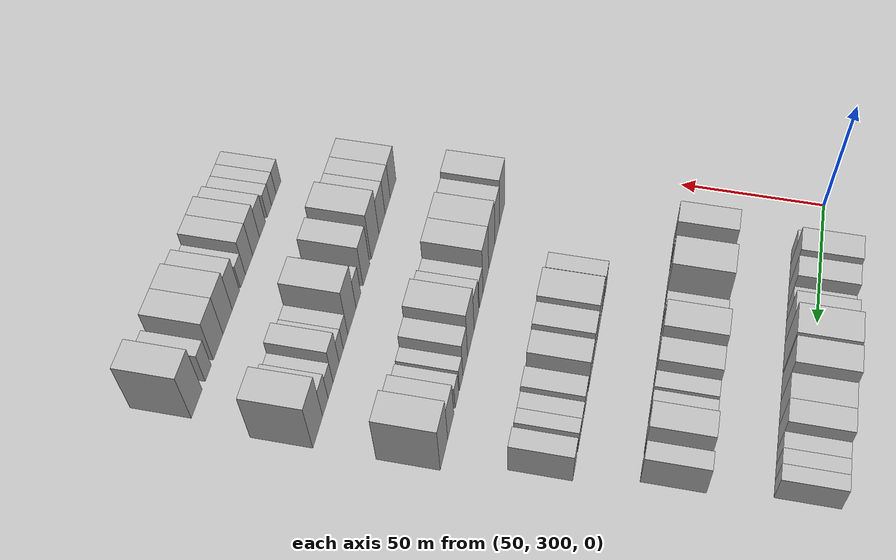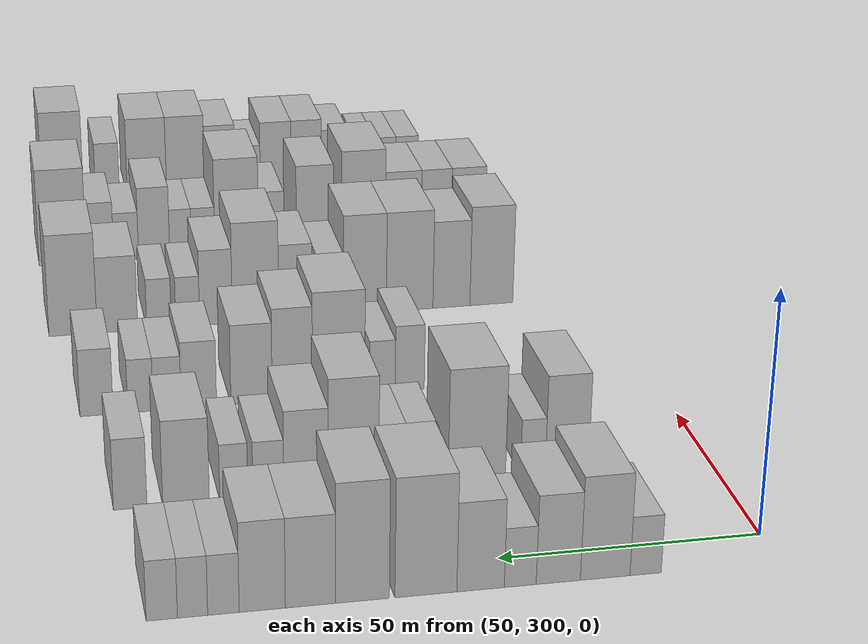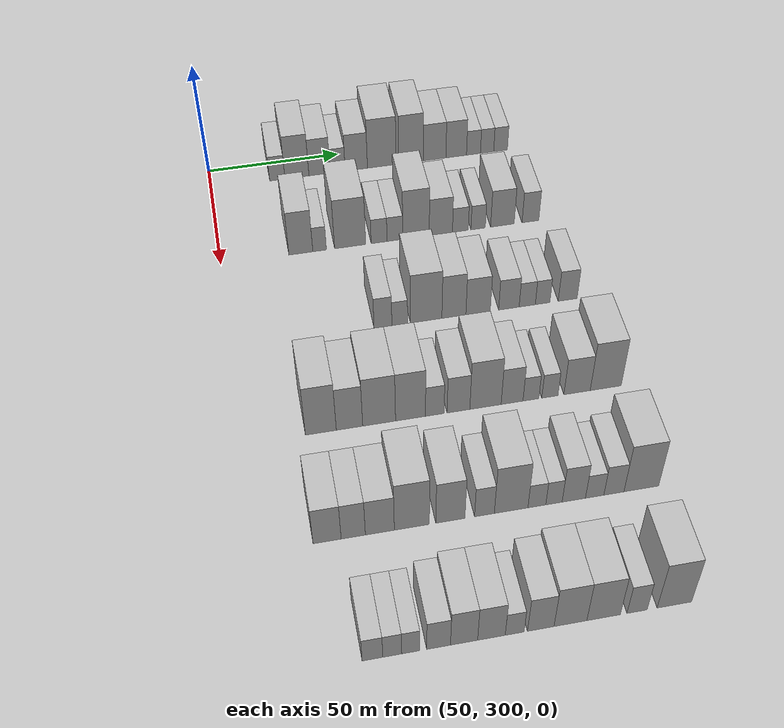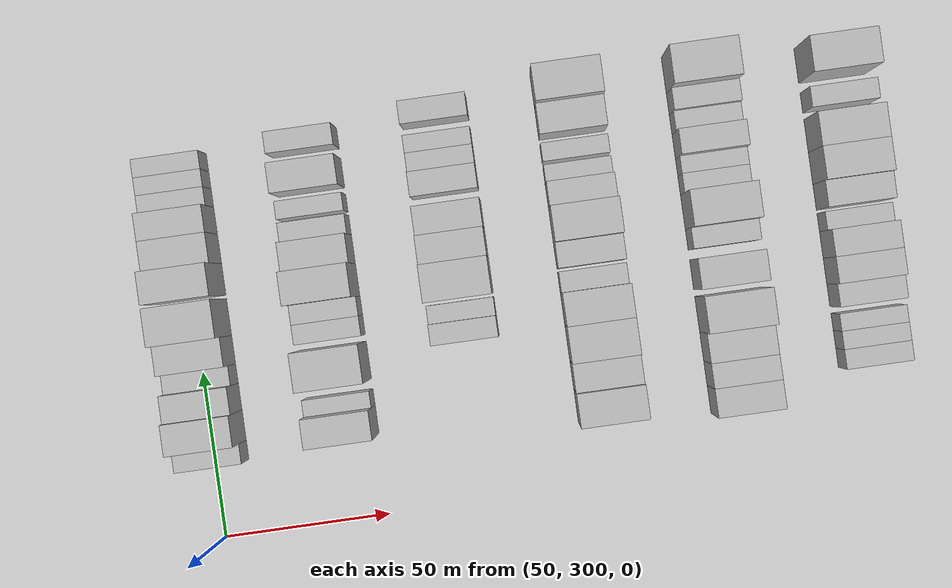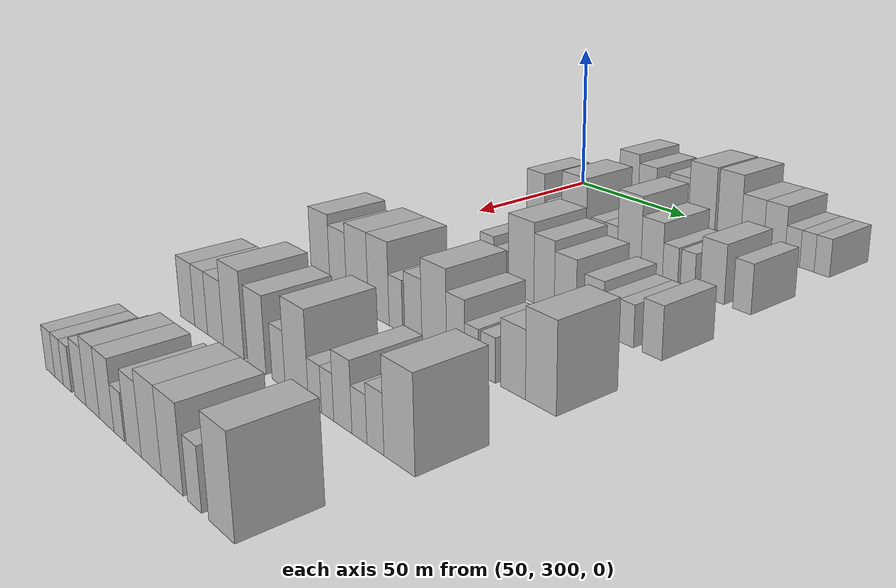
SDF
<sdf version="1.6">
 <world name="default">
  <model name="building_104">
   <static>1</static>
   <pose>50.0000 325.0932 0 0.000000 0.000000 0.000000</pose>
   <link name="link">
    <pose>0 0 6.00 0 0 0</pose>
    <collision name="collision"><geometry><box><size>20.0000 5.8486 12.0000</size></box></geometry></collision>
    <visual name="visual">
     <cast_shadows>0</cast_shadows>
     <geometry><box><size>20.0000 5.8486 12.0000</size></box></geometry>
     <material>
      <script>
       <uri>model://HANNAS_wall/materials/scripts</uri>
       <uri>model://HANNAS_wall/materials/textures</uri>
       <name>vrc/HANNAS_wall</name>
      </script>
     </material>
    </visual>
   </link>
  </model>
  <model name="building_105">
   <static>1</static>
   <pose>50.0000 332.6283 0 0.000000 0.000000 0.000000</pose>
   <link name="link">
    <pose>0 0 10.50 0 0 0</pose>
    <collision name="collision"><geometry><box><size>20.0000 9.2216 21.0000</size></box></geometry></collision>
    <visual name="visual">
     <cast_shadows>0</cast_shadows>
     <geometry><box><size>20.0000 9.2216 21.0000</size></box></geometry>
     <material>
      <script>
       <uri>model://HANNAS_wall/materials/scripts</uri>
       <uri>model://HANNAS_wall/materials/textures</uri>
       <name>vrc/HANNAS_wall</name>
      </script>
     </material>
    </visual>
   </link>
  </model>
  <model name="building_106">
   <static>1</static>
   <pose>50.0000 341.3157 0 0.000000 0.000000 0.000000</pose>
   <link name="link">
    <pose>0 0 9.00 0 0 0</pose>
    <collision name="collision"><geometry><box><size>20.0000 8.1533 18.0000</size></box></geometry></collision>
    <visual name="visual">
     <cast_shadows>0</cast_shadows>
     <geometry><box><size>20.0000 8.1533 18.0000</size></box></geometry>
     <material>
      <script>
       <uri>model://HANNAS_wall/materials/scripts</uri>
       <uri>model://HANNAS_wall/materials/textures</uri>
       <name>vrc/HANNAS_wall</name>
      </script>
     </material>
    </visual>
   </link>
  </model>
  <model name="building_107">
   <static>1</static>
   <pose>50.0000 348.3226 0 0.000000 0.000000 0.000000</pose>
   <link name="link">
    <pose>0 0 6.00 0 0 0</pose>
    <collision name="collision"><geometry><box><size>20.0000 5.8605 12.0000</size></box></geometry></collision>
    <visual name="visual">
     <cast_shadows>0</cast_shadows>
     <geometry><box><size>20.0000 5.8605 12.0000</size></box></geometry>
     <material>
      <script>
       <uri>model://HANNAS_wall/materials/scripts</uri>
       <uri>model://HANNAS_wall/materials/textures</uri>
       <name>vrc/HANNAS_wall</name>
      </script>
     </material>
    </visual>
   </link>
  </model>
  <model name="building_108">
   <static>1</static>
   <pose>50.0000 355.5914 0 0.000000 0.000000 0.000000</pose>
   <link name="link">
    <pose>0 0 9.00 0 0 0</pose>
    <collision name="collision"><geometry><box><size>20.0000 8.6771 18.0000</size></box></geometry></collision>
    <visual name="visual">
     <cast_shadows>0</cast_shadows>
     <geometry><box><size>20.0000 8.6771 18.0000</size></box></geometry>
     <material>
      <script>
       <uri>model://HANNAS_wall/materials/scripts</uri>
       <uri>model://HANNAS_wall/materials/textures</uri>
       <name>vrc/HANNAS_wall</name>
      </script>
     </material>
    </visual>
   </link>
  </model>
  <model name="building_109">
   <static>1</static>
   <pose>50.0000 365.5402 0 0.000000 0.000000 0.000000</pose>
   <link name="link">
    <pose>0 0 12.00 0 0 0</pose>
    <collision name="collision"><geometry><box><size>20.0000 11.2205 24.0000</size></box></geometry></collision>
    <visual name="visual">
     <cast_shadows>0</cast_shadows>
     <geometry><box><size>20.0000 11.2205 24.0000</size></box></geometry>
     <material>
      <script>
       <uri>model://HANNAS_wall/materials/scripts</uri>
       <uri>model://HANNAS_wall/materials/textures</uri>
       <name>vrc/HANNAS_wall</name>
      </script>
     </material>
    </visual>
   </link>
  </model>
  <model name="building_110">
   <static>1</static>
   <pose>50.0000 376.9643 0 0.000000 0.000000 0.000000</pose>
   <link name="link">
    <pose>0 0 12.00 0 0 0</pose>
    <collision name="collision"><geometry><box><size>20.0000 9.6275 24.0000</size></box></geometry></collision>
    <visual name="visual">
     <cast_shadows>0</cast_shadows>
     <geometry><box><size>20.0000 9.6275 24.0000</size></box></geometry>
     <material>
      <script>
       <uri>model://HANNAS_wall/materials/scripts</uri>
       <uri>model://HANNAS_wall/materials/textures</uri>
       <name>vrc/HANNAS_wall</name>
      </script>
     </material>
    </visual>
   </link>
  </model>
  <model name="building_111">
   <static>1</static>
   <pose>50.0000 386.2666 0 0.000000 0.000000 0.000000</pose>
   <link name="link">
    <pose>0 0 9.00 0 0 0</pose>
    <collision name="collision"><geometry><box><size>20.0000 8.9772 18.0000</size></box></geometry></collision>
    <visual name="visual">
     <cast_shadows>0</cast_shadows>
     <geometry><box><size>20.0000 8.9772 18.0000</size></box></geometry>
     <material>
      <script>
       <uri>model://HANNAS_wall/materials/scripts</uri>
       <uri>model://HANNAS_wall/materials/textures</uri>
       <name>vrc/HANNAS_wall</name>
      </script>
     </material>
    </visual>
   </link>
  </model>
  <model name="building_112">
   <static>1</static>
   <pose>50.0000 394.8444 0 0.000000 0.000000 0.000000</pose>
   <link name="link">
    <pose>0 0 9.00 0 0 0</pose>
    <collision name="collision"><geometry><box><size>20.0000 8.1784 18.0000</size></box></geometry></collision>
    <visual name="visual">
     <cast_shadows>0</cast_shadows>
     <geometry><box><size>20.0000 8.1784 18.0000</size></box></geometry>
     <material>
      <script>
       <uri>model://HANNAS_wall/materials/scripts</uri>
       <uri>model://HANNAS_wall/materials/textures</uri>
       <name>vrc/HANNAS_wall</name>
      </script>
     </material>
    </visual>
   </link>
  </model>
  <model name="building_113">
   <static>1</static>
   <pose>50.0000 401.7102 0 0.000000 0.000000 0.000000</pose>
   <link name="link">
    <pose>0 0 6.00 0 0 0</pose>
    <collision name="collision"><geometry><box><size>20.0000 5.5532 12.0000</size></box></geometry></collision>
    <visual name="visual">
     <cast_shadows>0</cast_shadows>
     <geometry><box><size>20.0000 5.5532 12.0000</size></box></geometry>
     <material>
      <script>
       <uri>model://HANNAS_wall/materials/scripts</uri>
       <uri>model://HANNAS_wall/materials/textures</uri>
       <name>vrc/HANNAS_wall</name>
      </script>
     </material>
    </visual>
   </link>
  </model>
  <model name="building_114">
   <static>1</static>
   <pose>50.0000 407.1340 0 0.000000 0.000000 0.000000</pose>
   <link name="link">
    <pose>0 0 6.00 0 0 0</pose>
    <collision name="collision"><geometry><box><size>20.0000 5.2944 12.0000</size></box></geometry></collision>
    <visual name="visual">
     <cast_shadows>0</cast_shadows>
     <geometry><box><size>20.0000 5.2944 12.0000</size></box></geometry>
     <material>
      <script>
       <uri>model://HANNAS_wall/materials/scripts</uri>
       <uri>model://HANNAS_wall/materials/textures</uri>
       <name>vrc/HANNAS_wall</name>
      </script>
     </material>
    </visual>
   </link>
  </model>
  <model name="building_115">
   <static>1</static>
   <pose>50.0000 412.5193 0 0.000000 0.000000 0.000000</pose>
   <link name="link">
    <pose>0 0 6.00 0 0 0</pose>
    <collision name="collision"><geometry><box><size>20.0000 5.4762 12.0000</size></box></geometry></collision>
    <visual name="visual">
     <cast_shadows>0</cast_shadows>
     <geometry><box><size>20.0000 5.4762 12.0000</size></box></geometry>
     <material>
      <script>
       <uri>model://HANNAS_wall/materials/scripts</uri>
       <uri>model://HANNAS_wall/materials/textures</uri>
       <name>vrc/HANNAS_wall</name>
      </script>
     </material>
    </visual>
   </link>
  </model>
  <model name="building_237">
   <static>1</static>
   <pose>90.0000 328.8429 0 0.000000 0.000000 0.000000</pose>
   <link name="link">
    <pose>0 0 10.50 0 0 0</pose>
    <collision name="collision"><geometry><box><size>20.0000 8.7253 21.0000</size></box></geometry></collision>
    <visual name="visual">
     <cast_shadows>0</cast_shadows>
     <geometry><box><size>20.0000 8.7253 21.0000</size></box></geometry>
     <material>
      <script>
       <uri>model://HANNAS_wall/materials/scripts</uri>
       <uri>model://HANNAS_wall/materials/textures</uri>
       <name>vrc/HANNAS_wall</name>
      </script>
     </material>
    </visual>
   </link>
  </model>
  <model name="building_238">
   <static>1</static>
   <pose>90.0000 335.6854 0 0.000000 0.000000 0.000000</pose>
   <link name="link">
    <pose>0 0 6.00 0 0 0</pose>
    <collision name="collision"><geometry><box><size>20.0000 4.9598 12.0000</size></box></geometry></collision>
    <visual name="visual">
     <cast_shadows>0</cast_shadows>
     <geometry><box><size>20.0000 4.9598 12.0000</size></box></geometry>
     <material>
      <script>
       <uri>model://HANNAS_wall/materials/scripts</uri>
       <uri>model://HANNAS_wall/materials/textures</uri>
       <name>vrc/HANNAS_wall</name>
      </script>
     </material>
    </visual>
   </link>
  </model>
  <model name="building_239">
   <static>1</static>
   <pose>90.0000 346.8883 0 0.000000 0.000000 0.000000</pose>
   <link name="link">
    <pose>0 0 12.00 0 0 0</pose>
    <collision name="collision"><geometry><box><size>20.0000 11.4459 24.0000</size></box></geometry></collision>
    <visual name="visual">
     <cast_shadows>0</cast_shadows>
     <geometry><box><size>20.0000 11.4459 24.0000</size></box></geometry>
     <material>
      <script>
       <uri>model://HANNAS_wall/materials/scripts</uri>
       <uri>model://HANNAS_wall/materials/textures</uri>
       <name>vrc/HANNAS_wall</name>
      </script>
     </material>
    </visual>
   </link>
  </model>
  <model name="building_240">
   <static>1</static>
   <pose>90.0000 357.5527 0 0.000000 0.000000 0.000000</pose>
   <link name="link">
    <pose>0 0 6.00 0 0 0</pose>
    <collision name="collision"><geometry><box><size>20.0000 5.8829 12.0000</size></box></geometry></collision>
    <visual name="visual">
     <cast_shadows>0</cast_shadows>
     <geometry><box><size>20.0000 5.8829 12.0000</size></box></geometry>
     <material>
      <script>
       <uri>model://HANNAS_wall/materials/scripts</uri>
       <uri>model://HANNAS_wall/materials/textures</uri>
       <name>vrc/HANNAS_wall</name>
      </script>
     </material>
    </visual>
   </link>
  </model>
  <model name="building_241">
   <static>1</static>
   <pose>90.0000 363.4102 0 0.000000 0.000000 0.000000</pose>
   <link name="link">
    <pose>0 0 6.00 0 0 0</pose>
    <collision name="collision"><geometry><box><size>20.0000 5.8320 12.0000</size></box></geometry></collision>
    <visual name="visual">
     <cast_shadows>0</cast_shadows>
     <geometry><box><size>20.0000 5.8320 12.0000</size></box></geometry>
     <material>
      <script>
       <uri>model://HANNAS_wall/materials/scripts</uri>
       <uri>model://HANNAS_wall/materials/textures</uri>
       <name>vrc/HANNAS_wall</name>
      </script>
     </material>
    </visual>
   </link>
  </model>
  <model name="building_242">
   <static>1</static>
   <pose>90.0000 371.2535 0 0.000000 0.000000 0.000000</pose>
   <link name="link">
    <pose>0 0 12.00 0 0 0</pose>
    <collision name="collision"><geometry><box><size>20.0000 9.8546 24.0000</size></box></geometry></collision>
    <visual name="visual">
     <cast_shadows>0</cast_shadows>
     <geometry><box><size>20.0000 9.8546 24.0000</size></box></geometry>
     <material>
      <script>
       <uri>model://HANNAS_wall/materials/scripts</uri>
       <uri>model://HANNAS_wall/materials/textures</uri>
       <name>vrc/HANNAS_wall</name>
      </script>
     </material>
    </visual>
   </link>
  </model>
  <model name="building_243">
   <static>1</static>
   <pose>90.0000 380.5284 0 0.000000 0.000000 0.000000</pose>
   <link name="link">
    <pose>0 0 9.00 0 0 0</pose>
    <collision name="collision"><geometry><box><size>20.0000 8.6953 18.0000</size></box></geometry></collision>
    <visual name="visual">
     <cast_shadows>0</cast_shadows>
     <geometry><box><size>20.0000 8.6953 18.0000</size></box></geometry>
     <material>
      <script>
       <uri>model://HANNAS_wall/materials/scripts</uri>
       <uri>model://HANNAS_wall/materials/textures</uri>
       <name>vrc/HANNAS_wall</name>
      </script>
     </material>
    </visual>
   </link>
  </model>
  <model name="building_244">
   <static>1</static>
   <pose>90.0000 387.8556 0 0.000000 0.000000 0.000000</pose>
   <link name="link">
    <pose>0 0 6.00 0 0 0</pose>
    <collision name="collision"><geometry><box><size>20.0000 5.9591 12.0000</size></box></geometry></collision>
    <visual name="visual">
     <cast_shadows>0</cast_shadows>
     <geometry><box><size>20.0000 5.9591 12.0000</size></box></geometry>
     <material>
      <script>
       <uri>model://HANNAS_wall/materials/scripts</uri>
       <uri>model://HANNAS_wall/materials/textures</uri>
       <name>vrc/HANNAS_wall</name>
      </script>
     </material>
    </visual>
   </link>
  </model>
  <model name="building_245">
   <static>1</static>
   <pose>90.0000 394.5390 0 0.000000 0.000000 0.000000</pose>
   <link name="link">
    <pose>0 0 6.00 0 0 0</pose>
    <collision name="collision"><geometry><box><size>20.0000 5.4077 12.0000</size></box></geometry></collision>
    <visual name="visual">
     <cast_shadows>0</cast_shadows>
     <geometry><box><size>20.0000 5.4077 12.0000</size></box></geometry>
     <material>
      <script>
       <uri>model://HANNAS_wall/materials/scripts</uri>
       <uri>model://HANNAS_wall/materials/textures</uri>
       <name>vrc/HANNAS_wall</name>
      </script>
     </material>
    </visual>
   </link>
  </model>
  <model name="building_246">
   <static>1</static>
   <pose>90.0000 403.7065 0 0.000000 0.000000 0.000000</pose>
   <link name="link">
    <pose>0 0 9.00 0 0 0</pose>
    <collision name="collision"><geometry><box><size>20.0000 8.9273 18.0000</size></box></geometry></collision>
    <visual name="visual">
     <cast_shadows>0</cast_shadows>
     <geometry><box><size>20.0000 8.9273 18.0000</size></box></geometry>
     <material>
      <script>
       <uri>model://HANNAS_wall/materials/scripts</uri>
       <uri>model://HANNAS_wall/materials/textures</uri>
       <name>vrc/HANNAS_wall</name>
      </script>
     </material>
    </visual>
   </link>
  </model>
  <model name="building_247">
   <static>1</static>
   <pose>90.0000 414.3589 0 0.000000 0.000000 0.000000</pose>
   <link name="link">
    <pose>0 0 7.50 0 0 0</pose>
    <collision name="collision"><geometry><box><size>20.0000 6.3774 15.0000</size></box></geometry></collision>
    <visual name="visual">
     <cast_shadows>0</cast_shadows>
     <geometry><box><size>20.0000 6.3774 15.0000</size></box></geometry>
     <material>
      <script>
       <uri>model://HANNAS_wall/materials/scripts</uri>
       <uri>model://HANNAS_wall/materials/textures</uri>
       <name>vrc/HANNAS_wall</name>
      </script>
     </material>
    </visual>
   </link>
  </model>
  <model name="building_380">
   <static>1</static>
   <pose>130.0000 351.9761 0 0.000000 0.000000 0.000000</pose>
   <link name="link">
    <pose>0 0 7.50 0 0 0</pose>
    <collision name="collision"><geometry><box><size>20.0000 6.2389 15.0000</size></box></geometry></collision>
    <visual name="visual">
     <cast_shadows>0</cast_shadows>
     <geometry><box><size>20.0000 6.2389 15.0000</size></box></geometry>
     <material>
      <script>
       <uri>model://HANNAS_wall/materials/scripts</uri>
       <uri>model://HANNAS_wall/materials/textures</uri>
       <name>vrc/HANNAS_wall</name>
      </script>
     </material>
    </visual>
   </link>
  </model>
  <model name="building_381">
   <static>1</static>
   <pose>130.0000 357.8339 0 0.000000 0.000000 0.000000</pose>
   <link name="link">
    <pose>0 0 6.00 0 0 0</pose>
    <collision name="collision"><geometry><box><size>20.0000 5.4766 12.0000</size></box></geometry></collision>
    <visual name="visual">
     <cast_shadows>0</cast_shadows>
     <geometry><box><size>20.0000 5.4766 12.0000</size></box></geometry>
     <material>
      <script>
       <uri>model://HANNAS_wall/materials/scripts</uri>
       <uri>model://HANNAS_wall/materials/textures</uri>
       <name>vrc/HANNAS_wall</name>
      </script>
     </material>
    </visual>
   </link>
  </model>
  <model name="building_382">
   <static>1</static>
   <pose>130.0000 367.1140 0 0.000000 0.000000 0.000000</pose>
   <link name="link">
    <pose>0 0 12.00 0 0 0</pose>
    <collision name="collision"><geometry><box><size>20.0000 11.0837 24.0000</size></box></geometry></collision>
    <visual name="visual">
     <cast_shadows>0</cast_shadows>
     <geometry><box><size>20.0000 11.0837 24.0000</size></box></geometry>
     <material>
      <script>
       <uri>model://HANNAS_wall/materials/scripts</uri>
       <uri>model://HANNAS_wall/materials/textures</uri>
       <name>vrc/HANNAS_wall</name>
      </script>
     </material>
    </visual>
   </link>
  </model>
  <model name="building_383">
   <static>1</static>
   <pose>130.0000 376.9069 0 0.000000 0.000000 0.000000</pose>
   <link name="link">
    <pose>0 0 10.50 0 0 0</pose>
    <collision name="collision"><geometry><box><size>20.0000 8.5020 21.0000</size></box></geometry></collision>
    <visual name="visual">
     <cast_shadows>0</cast_shadows>
     <geometry><box><size>20.0000 8.5020 21.0000</size></box></geometry>
     <material>
      <script>
       <uri>model://HANNAS_wall/materials/scripts</uri>
       <uri>model://HANNAS_wall/materials/textures</uri>
       <name>vrc/HANNAS_wall</name>
      </script>
     </material>
    </visual>
   </link>
  </model>
  <model name="building_384">
   <static>1</static>
   <pose>130.0000 385.4846 0 0.000000 0.000000 0.000000</pose>
   <link name="link">
    <pose>0 0 9.00 0 0 0</pose>
    <collision name="collision"><geometry><box><size>20.0000 8.6534 18.0000</size></box></geometry></collision>
    <visual name="visual">
     <cast_shadows>0</cast_shadows>
     <geometry><box><size>20.0000 8.6534 18.0000</size></box></geometry>
     <material>
      <script>
       <uri>model://HANNAS_wall/materials/scripts</uri>
       <uri>model://HANNAS_wall/materials/textures</uri>
       <name>vrc/HANNAS_wall</name>
      </script>
     </material>
    </visual>
   </link>
  </model>
  <model name="building_385">
   <static>1</static>
   <pose>130.0000 396.4824 0 0.000000 0.000000 0.000000</pose>
   <link name="link">
    <pose>0 0 7.50 0 0 0</pose>
    <collision name="collision"><geometry><box><size>20.0000 7.3421 15.0000</size></box></geometry></collision>
    <visual name="visual">
     <cast_shadows>0</cast_shadows>
     <geometry><box><size>20.0000 7.3421 15.0000</size></box></geometry>
     <material>
      <script>
       <uri>model://HANNAS_wall/materials/scripts</uri>
       <uri>model://HANNAS_wall/materials/textures</uri>
       <name>vrc/HANNAS_wall</name>
      </script>
     </material>
    </visual>
   </link>
  </model>
  <model name="building_386">
   <static>1</static>
   <pose>130.0000 403.0617 0 0.000000 0.000000 0.000000</pose>
   <link name="link">
    <pose>0 0 6.00 0 0 0</pose>
    <collision name="collision"><geometry><box><size>20.0000 5.8165 12.0000</size></box></geometry></collision>
    <visual name="visual">
     <cast_shadows>0</cast_shadows>
     <geometry><box><size>20.0000 5.8165 12.0000</size></box></geometry>
     <material>
      <script>
       <uri>model://HANNAS_wall/materials/scripts</uri>
       <uri>model://HANNAS_wall/materials/textures</uri>
       <name>vrc/HANNAS_wall</name>
      </script>
     </material>
    </visual>
   </link>
  </model>
  <model name="building_387">
   <static>1</static>
   <pose>130.0000 408.5924 0 0.000000 0.000000 0.000000</pose>
   <link name="link">
    <pose>0 0 6.00 0 0 0</pose>
    <collision name="collision"><geometry><box><size>20.0000 5.2448 12.0000</size></box></geometry></collision>
    <visual name="visual">
     <cast_shadows>0</cast_shadows>
     <geometry><box><size>20.0000 5.2448 12.0000</size></box></geometry>
     <material>
      <script>
       <uri>model://HANNAS_wall/materials/scripts</uri>
       <uri>model://HANNAS_wall/materials/textures</uri>
       <name>vrc/HANNAS_wall</name>
      </script>
     </material>
    </visual>
   </link>
  </model>
  <model name="building_388">
   <static>1</static>
   <pose>130.0000 417.6272 0 0.000000 0.000000 0.000000</pose>
   <link name="link">
    <pose>0 0 7.50 0 0 0</pose>
    <collision name="collision"><geometry><box><size>20.0000 6.8248 15.0000</size></box></geometry></collision>
    <visual name="visual">
     <cast_shadows>0</cast_shadows>
     <geometry><box><size>20.0000 6.8248 15.0000</size></box></geometry>
     <material>
      <script>
       <uri>model://HANNAS_wall/materials/scripts</uri>
       <uri>model://HANNAS_wall/materials/textures</uri>
       <name>vrc/HANNAS_wall</name>
      </script>
     </material>
    </visual>
   </link>
  </model>
  <model name="building_509">
   <static>1</static>
   <pose>170.0000 324.7236 0 0.000000 0.000000 0.000000</pose>
   <link name="link">
    <pose>0 0 12.00 0 0 0</pose>
    <collision name="collision"><geometry><box><size>20.0000 10.0204 24.0000</size></box></geometry></collision>
    <visual name="visual">
     <cast_shadows>0</cast_shadows>
     <geometry><box><size>20.0000 10.0204 24.0000</size></box></geometry>
     <material>
      <script>
       <uri>model://HANNAS_wall/materials/scripts</uri>
       <uri>model://HANNAS_wall/materials/textures</uri>
       <name>vrc/HANNAS_wall</name>
      </script>
     </material>
    </visual>
   </link>
  </model>
  <model name="building_510">
   <static>1</static>
   <pose>170.0000 334.0360 0 0.000000 0.000000 0.000000</pose>
   <link name="link">
    <pose>0 0 10.50 0 0 0</pose>
    <collision name="collision"><geometry><box><size>20.0000 8.6044 21.0000</size></box></geometry></collision>
    <visual name="visual">
     <cast_shadows>0</cast_shadows>
     <geometry><box><size>20.0000 8.6044 21.0000</size></box></geometry>
     <material>
      <script>
       <uri>model://HANNAS_wall/materials/scripts</uri>
       <uri>model://HANNAS_wall/materials/textures</uri>
       <name>vrc/HANNAS_wall</name>
      </script>
     </material>
    </visual>
   </link>
  </model>
  <model name="building_511">
   <static>1</static>
   <pose>170.0000 343.7216 0 0.000000 0.000000 0.000000</pose>
   <link name="link">
    <pose>0 0 12.00 0 0 0</pose>
    <collision name="collision"><geometry><box><size>20.0000 10.7669 24.0000</size></box></geometry></collision>
    <visual name="visual">
     <cast_shadows>0</cast_shadows>
     <geometry><box><size>20.0000 10.7669 24.0000</size></box></geometry>
     <material>
      <script>
       <uri>model://HANNAS_wall/materials/scripts</uri>
       <uri>model://HANNAS_wall/materials/textures</uri>
       <name>vrc/HANNAS_wall</name>
      </script>
     </material>
    </visual>
   </link>
  </model>
  <model name="building_512">
   <static>1</static>
   <pose>170.0000 354.0365 0 0.000000 0.000000 0.000000</pose>
   <link name="link">
    <pose>0 0 12.00 0 0 0</pose>
    <collision name="collision"><geometry><box><size>20.0000 9.8629 24.0000</size></box></geometry></collision>
    <visual name="visual">
     <cast_shadows>0</cast_shadows>
     <geometry><box><size>20.0000 9.8629 24.0000</size></box></geometry>
     <material>
      <script>
       <uri>model://HANNAS_wall/materials/scripts</uri>
       <uri>model://HANNAS_wall/materials/textures</uri>
       <name>vrc/HANNAS_wall</name>
      </script>
     </material>
    </visual>
   </link>
  </model>
  <model name="building_513">
   <static>1</static>
   <pose>170.0000 362.0419 0 0.000000 0.000000 0.000000</pose>
   <link name="link">
    <pose>0 0 7.50 0 0 0</pose>
    <collision name="collision"><geometry><box><size>20.0000 6.1479 15.0000</size></box></geometry></collision>
    <visual name="visual">
     <cast_shadows>0</cast_shadows>
     <geometry><box><size>20.0000 6.1479 15.0000</size></box></geometry>
     <material>
      <script>
       <uri>model://HANNAS_wall/materials/scripts</uri>
       <uri>model://HANNAS_wall/materials/textures</uri>
       <name>vrc/HANNAS_wall</name>
      </script>
     </material>
    </visual>
   </link>
  </model>
  <model name="building_514">
   <static>1</static>
   <pose>170.0000 369.9075 0 0.000000 0.000000 0.000000</pose>
   <link name="link">
    <pose>0 0 9.00 0 0 0</pose>
    <collision name="collision"><geometry><box><size>20.0000 7.5834 18.0000</size></box></geometry></collision>
    <visual name="visual">
     <cast_shadows>0</cast_shadows>
     <geometry><box><size>20.0000 7.5834 18.0000</size></box></geometry>
     <material>
      <script>
       <uri>model://HANNAS_wall/materials/scripts</uri>
       <uri>model://HANNAS_wall/materials/textures</uri>
       <name>vrc/HANNAS_wall</name>
      </script>
     </material>
    </visual>
   </link>
  </model>
  <model name="building_515">
   <static>1</static>
   <pose>170.0000 378.9357 0 0.000000 0.000000 0.000000</pose>
   <link name="link">
    <pose>0 0 12.00 0 0 0</pose>
    <collision name="collision"><geometry><box><size>20.0000 10.4730 24.0000</size></box></geometry></collision>
    <visual name="visual">
     <cast_shadows>0</cast_shadows>
     <geometry><box><size>20.0000 10.4730 24.0000</size></box></geometry>
     <material>
      <script>
       <uri>model://HANNAS_wall/materials/scripts</uri>
       <uri>model://HANNAS_wall/materials/textures</uri>
       <name>vrc/HANNAS_wall</name>
      </script>
     </material>
    </visual>
   </link>
  </model>
  <model name="building_516">
   <static>1</static>
   <pose>170.0000 387.8551 0 0.000000 0.000000 0.000000</pose>
   <link name="link">
    <pose>0 0 9.00 0 0 0</pose>
    <collision name="collision"><geometry><box><size>20.0000 7.3660 18.0000</size></box></geometry></collision>
    <visual name="visual">
     <cast_shadows>0</cast_shadows>
     <geometry><box><size>20.0000 7.3660 18.0000</size></box></geometry>
     <material>
      <script>
       <uri>model://HANNAS_wall/materials/scripts</uri>
       <uri>model://HANNAS_wall/materials/textures</uri>
       <name>vrc/HANNAS_wall</name>
      </script>
     </material>
    </visual>
   </link>
  </model>
  <model name="building_517">
   <static>1</static>
   <pose>170.0000 394.2092 0 0.000000 0.000000 0.000000</pose>
   <link name="link">
    <pose>0 0 6.00 0 0 0</pose>
    <collision name="collision"><geometry><box><size>20.0000 5.3421 12.0000</size></box></geometry></collision>
    <visual name="visual">
     <cast_shadows>0</cast_shadows>
     <geometry><box><size>20.0000 5.3421 12.0000</size></box></geometry>
     <material>
      <script>
       <uri>model://HANNAS_wall/materials/scripts</uri>
       <uri>model://HANNAS_wall/materials/textures</uri>
       <name>vrc/HANNAS_wall</name>
      </script>
     </material>
    </visual>
   </link>
  </model>
  <model name="building_518">
   <static>1</static>
   <pose>170.0000 400.6266 0 0.000000 0.000000 0.000000</pose>
   <link name="link">
    <pose>0 0 6.00 0 0 0</pose>
    <collision name="collision"><geometry><box><size>20.0000 5.4926 12.0000</size></box></geometry></collision>
    <visual name="visual">
     <cast_shadows>0</cast_shadows>
     <geometry><box><size>20.0000 5.4926 12.0000</size></box></geometry>
     <material>
      <script>
       <uri>model://HANNAS_wall/materials/scripts</uri>
       <uri>model://HANNAS_wall/materials/textures</uri>
       <name>vrc/HANNAS_wall</name>
      </script>
     </material>
    </visual>
   </link>
  </model>
  <model name="building_519">
   <static>1</static>
   <pose>170.0000 409.8722 0 0.000000 0.000000 0.000000</pose>
   <link name="link">
    <pose>0 0 9.00 0 0 0</pose>
    <collision name="collision"><geometry><box><size>20.0000 8.9986 18.0000</size></box></geometry></collision>
    <visual name="visual">
     <cast_shadows>0</cast_shadows>
     <geometry><box><size>20.0000 8.9986 18.0000</size></box></geometry>
     <material>
      <script>
       <uri>model://HANNAS_wall/materials/scripts</uri>
       <uri>model://HANNAS_wall/materials/textures</uri>
       <name>vrc/HANNAS_wall</name>
      </script>
     </material>
    </visual>
   </link>
  </model>
  <model name="building_520">
   <static>1</static>
   <pose>170.0000 419.6890 0 0.000000 0.000000 0.000000</pose>
   <link name="link">
    <pose>0 0 12.00 0 0 0</pose>
    <collision name="collision"><geometry><box><size>20.0000 10.6349 24.0000</size></box></geometry></collision>
    <visual name="visual">
     <cast_shadows>0</cast_shadows>
     <geometry><box><size>20.0000 10.6349 24.0000</size></box></geometry>
     <material>
      <script>
       <uri>model://HANNAS_wall/materials/scripts</uri>
       <uri>model://HANNAS_wall/materials/textures</uri>
       <name>vrc/HANNAS_wall</name>
      </script>
     </material>
    </visual>
   </link>
  </model>
  <model name="building_653">
   <static>1</static>
   <pose>210.0000 320.9078 0 0.000000 0.000000 0.000000</pose>
   <link name="link">
    <pose>0 0 9.00 0 0 0</pose>
    <collision name="collision"><geometry><box><size>20.0000 8.5502 18.0000</size></box></geometry></collision>
    <visual name="visual">
     <cast_shadows>0</cast_shadows>
     <geometry><box><size>20.0000 8.5502 18.0000</size></box></geometry>
     <material>
      <script>
       <uri>model://HANNAS_wall/materials/scripts</uri>
       <uri>model://HANNAS_wall/materials/textures</uri>
       <name>vrc/HANNAS_wall</name>
      </script>
     </material>
    </visual>
   </link>
  </model>
  <model name="building_654">
   <static>1</static>
   <pose>210.0000 328.8822 0 0.000000 0.000000 0.000000</pose>
   <link name="link">
    <pose>0 0 9.00 0 0 0</pose>
    <collision name="collision"><geometry><box><size>20.0000 7.3985 18.0000</size></box></geometry></collision>
    <visual name="visual">
     <cast_shadows>0</cast_shadows>
     <geometry><box><size>20.0000 7.3985 18.0000</size></box></geometry>
     <material>
      <script>
       <uri>model://HANNAS_wall/materials/scripts</uri>
       <uri>model://HANNAS_wall/materials/textures</uri>
       <name>vrc/HANNAS_wall</name>
      </script>
     </material>
    </visual>
   </link>
  </model>
  <model name="building_655">
   <static>1</static>
   <pose>210.0000 337.0217 0 0.000000 0.000000 0.000000</pose>
   <link name="link">
    <pose>0 0 9.00 0 0 0</pose>
    <collision name="collision"><geometry><box><size>20.0000 8.8804 18.0000</size></box></geometry></collision>
    <visual name="visual">
     <cast_shadows>0</cast_shadows>
     <geometry><box><size>20.0000 8.8804 18.0000</size></box></geometry>
     <material>
      <script>
       <uri>model://HANNAS_wall/materials/scripts</uri>
       <uri>model://HANNAS_wall/materials/textures</uri>
       <name>vrc/HANNAS_wall</name>
      </script>
     </material>
    </visual>
   </link>
  </model>
  <model name="building_656">
   <static>1</static>
   <pose>210.0000 346.8545 0 0.000000 0.000000 0.000000</pose>
   <link name="link">
    <pose>0 0 12.00 0 0 0</pose>
    <collision name="collision"><geometry><box><size>20.0000 10.7853 24.0000</size></box></geometry></collision>
    <visual name="visual">
     <cast_shadows>0</cast_shadows>
     <geometry><box><size>20.0000 10.7853 24.0000</size></box></geometry>
     <material>
      <script>
       <uri>model://HANNAS_wall/materials/scripts</uri>
       <uri>model://HANNAS_wall/materials/textures</uri>
       <name>vrc/HANNAS_wall</name>
      </script>
     </material>
    </visual>
   </link>
  </model>
  <model name="building_657">
   <static>1</static>
   <pose>210.0000 358.7822 0 0.000000 0.000000 0.000000</pose>
   <link name="link">
    <pose>0 0 10.50 0 0 0</pose>
    <collision name="collision"><geometry><box><size>20.0000 9.0701 21.0000</size></box></geometry></collision>
    <visual name="visual">
     <cast_shadows>0</cast_shadows>
     <geometry><box><size>20.0000 9.0701 21.0000</size></box></geometry>
     <material>
      <script>
       <uri>model://HANNAS_wall/materials/scripts</uri>
       <uri>model://HANNAS_wall/materials/textures</uri>
       <name>vrc/HANNAS_wall</name>
      </script>
     </material>
    </visual>
   </link>
  </model>
  <model name="building_658">
   <static>1</static>
   <pose>210.0000 369.4184 0 0.000000 0.000000 0.000000</pose>
   <link name="link">
    <pose>0 0 7.50 0 0 0</pose>
    <collision name="collision"><geometry><box><size>20.0000 6.2024 15.0000</size></box></geometry></collision>
    <visual name="visual">
     <cast_shadows>0</cast_shadows>
     <geometry><box><size>20.0000 6.2024 15.0000</size></box></geometry>
     <material>
      <script>
       <uri>model://HANNAS_wall/materials/scripts</uri>
       <uri>model://HANNAS_wall/materials/textures</uri>
       <name>vrc/HANNAS_wall</name>
      </script>
     </material>
    </visual>
   </link>
  </model>
  <model name="building_659">
   <static>1</static>
   <pose>210.0000 377.8121 0 0.000000 0.000000 0.000000</pose>
   <link name="link">
    <pose>0 0 12.00 0 0 0</pose>
    <collision name="collision"><geometry><box><size>20.0000 10.5851 24.0000</size></box></geometry></collision>
    <visual name="visual">
     <cast_shadows>0</cast_shadows>
     <geometry><box><size>20.0000 10.5851 24.0000</size></box></geometry>
     <material>
      <script>
       <uri>model://HANNAS_wall/materials/scripts</uri>
       <uri>model://HANNAS_wall/materials/textures</uri>
       <name>vrc/HANNAS_wall</name>
      </script>
     </material>
    </visual>
   </link>
  </model>
  <model name="building_660">
   <static>1</static>
   <pose>210.0000 385.9319 0 0.000000 0.000000 0.000000</pose>
   <link name="link">
    <pose>0 0 6.00 0 0 0</pose>
    <collision name="collision"><geometry><box><size>20.0000 5.6544 12.0000</size></box></geometry></collision>
    <visual name="visual">
     <cast_shadows>0</cast_shadows>
     <geometry><box><size>20.0000 5.6544 12.0000</size></box></geometry>
     <material>
      <script>
       <uri>model://HANNAS_wall/materials/scripts</uri>
       <uri>model://HANNAS_wall/materials/textures</uri>
       <name>vrc/HANNAS_wall</name>
      </script>
     </material>
    </visual>
   </link>
  </model>
  <model name="building_661">
   <static>1</static>
   <pose>210.0000 391.3472 0 0.000000 0.000000 0.000000</pose>
   <link name="link">
    <pose>0 0 6.00 0 0 0</pose>
    <collision name="collision"><geometry><box><size>20.0000 5.1764 12.0000</size></box></geometry></collision>
    <visual name="visual">
     <cast_shadows>0</cast_shadows>
     <geometry><box><size>20.0000 5.1764 12.0000</size></box></geometry>
     <material>
      <script>
       <uri>model://HANNAS_wall/materials/scripts</uri>
       <uri>model://HANNAS_wall/materials/textures</uri>
       <name>vrc/HANNAS_wall</name>
      </script>
     </material>
    </visual>
   </link>
  </model>
  <model name="building_662">
   <static>1</static>
   <pose>210.0000 397.6609 0 0.000000 0.000000 0.000000</pose>
   <link name="link">
    <pose>0 0 9.00 0 0 0</pose>
    <collision name="collision"><geometry><box><size>20.0000 7.4511 18.0000</size></box></geometry></collision>
    <visual name="visual">
     <cast_shadows>0</cast_shadows>
     <geometry><box><size>20.0000 7.4511 18.0000</size></box></geometry>
     <material>
      <script>
       <uri>model://HANNAS_wall/materials/scripts</uri>
       <uri>model://HANNAS_wall/materials/textures</uri>
       <name>vrc/HANNAS_wall</name>
      </script>
     </material>
    </visual>
   </link>
  </model>
  <model name="building_663">
   <static>1</static>
   <pose>210.0000 404.3371 0 0.000000 0.000000 0.000000</pose>
   <link name="link">
    <pose>0 0 6.00 0 0 0</pose>
    <collision name="collision"><geometry><box><size>20.0000 5.9013 12.0000</size></box></geometry></collision>
    <visual name="visual">
     <cast_shadows>0</cast_shadows>
     <geometry><box><size>20.0000 5.9013 12.0000</size></box></geometry>
     <material>
      <script>
       <uri>model://HANNAS_wall/materials/scripts</uri>
       <uri>model://HANNAS_wall/materials/textures</uri>
       <name>vrc/HANNAS_wall</name>
      </script>
     </material>
    </visual>
   </link>
  </model>
  <model name="building_664">
   <static>1</static>
   <pose>210.0000 410.5149 0 0.000000 0.000000 0.000000</pose>
   <link name="link">
    <pose>0 0 7.50 0 0 0</pose>
    <collision name="collision"><geometry><box><size>20.0000 6.4543 15.0000</size></box></geometry></collision>
    <visual name="visual">
     <cast_shadows>0</cast_shadows>
     <geometry><box><size>20.0000 6.4543 15.0000</size></box></geometry>
     <material>
      <script>
       <uri>model://HANNAS_wall/materials/scripts</uri>
       <uri>model://HANNAS_wall/materials/textures</uri>
       <name>vrc/HANNAS_wall</name>
      </script>
     </material>
    </visual>
   </link>
  </model>
  <model name="building_665">
   <static>1</static>
   <pose>210.0000 419.3545 0 0.000000 0.000000 0.000000</pose>
   <link name="link">
    <pose>0 0 12.00 0 0 0</pose>
    <collision name="collision"><geometry><box><size>20.0000 11.2248 24.0000</size></box></geometry></collision>
    <visual name="visual">
     <cast_shadows>0</cast_shadows>
     <geometry><box><size>20.0000 11.2248 24.0000</size></box></geometry>
     <material>
      <script>
       <uri>model://HANNAS_wall/materials/scripts</uri>
       <uri>model://HANNAS_wall/materials/textures</uri>
       <name>vrc/HANNAS_wall</name>
      </script>
     </material>
    </visual>
   </link>
  </model>
  <model name="building_788">
   <static>1</static>
   <pose>250.0000 327.9418 0 0.000000 0.000000 0.000000</pose>
   <link name="link">
    <pose>0 0 6.00 0 0 0</pose>
    <collision name="collision"><geometry><box><size>20.0000 5.9004 12.0000</size></box></geometry></collision>
    <visual name="visual">
     <cast_shadows>0</cast_shadows>
     <geometry><box><size>20.0000 5.9004 12.0000</size></box></geometry>
     <material>
      <script>
       <uri>model://HANNAS_wall/materials/scripts</uri>
       <uri>model://HANNAS_wall/materials/textures</uri>
       <name>vrc/HANNAS_wall</name>
      </script>
     </material>
    </visual>
   </link>
  </model>
  <model name="building_789">
   <static>1</static>
   <pose>250.0000 333.6109 0 0.000000 0.000000 0.000000</pose>
   <link name="link">
    <pose>0 0 6.00 0 0 0</pose>
    <collision name="collision"><geometry><box><size>20.0000 5.4379 12.0000</size></box></geometry></collision>
    <visual name="visual">
     <cast_shadows>0</cast_shadows>
     <geometry><box><size>20.0000 5.4379 12.0000</size></box></geometry>
     <material>
      <script>
       <uri>model://HANNAS_wall/materials/scripts</uri>
       <uri>model://HANNAS_wall/materials/textures</uri>
       <name>vrc/HANNAS_wall</name>
      </script>
     </material>
    </visual>
   </link>
  </model>
  <model name="building_790">
   <static>1</static>
   <pose>250.0000 338.9169 0 0.000000 0.000000 0.000000</pose>
   <link name="link">
    <pose>0 0 6.00 0 0 0</pose>
    <collision name="collision"><geometry><box><size>20.0000 5.1741 12.0000</size></box></geometry></collision>
    <visual name="visual">
     <cast_shadows>0</cast_shadows>
     <geometry><box><size>20.0000 5.1741 12.0000</size></box></geometry>
     <material>
      <script>
       <uri>model://HANNAS_wall/materials/scripts</uri>
       <uri>model://HANNAS_wall/materials/textures</uri>
       <name>vrc/HANNAS_wall</name>
      </script>
     </material>
    </visual>
   </link>
  </model>
  <model name="building_791">
   <static>1</static>
   <pose>250.0000 346.9444 0 0.000000 0.000000 0.000000</pose>
   <link name="link">
    <pose>0 0 7.50 0 0 0</pose>
    <collision name="collision"><geometry><box><size>20.0000 6.8807 15.0000</size></box></geometry></collision>
    <visual name="visual">
     <cast_shadows>0</cast_shadows>
     <geometry><box><size>20.0000 6.8807 15.0000</size></box></geometry>
     <material>
      <script>
       <uri>model://HANNAS_wall/materials/scripts</uri>
       <uri>model://HANNAS_wall/materials/textures</uri>
       <name>vrc/HANNAS_wall</name>
      </script>
     </material>
    </visual>
   </link>
  </model>
  <model name="building_792">
   <static>1</static>
   <pose>250.0000 354.3274 0 0.000000 0.000000 0.000000</pose>
   <link name="link">
    <pose>0 0 9.00 0 0 0</pose>
    <collision name="collision"><geometry><box><size>20.0000 7.8853 18.0000</size></box></geometry></collision>
    <visual name="visual">
     <cast_shadows>0</cast_shadows>
     <geometry><box><size>20.0000 7.8853 18.0000</size></box></geometry>
     <material>
      <script>
       <uri>model://HANNAS_wall/materials/scripts</uri>
       <uri>model://HANNAS_wall/materials/textures</uri>
       <name>vrc/HANNAS_wall</name>
      </script>
     </material>
    </visual>
   </link>
  </model>
  <model name="building_793">
   <static>1</static>
   <pose>250.0000 362.3002 0 0.000000 0.000000 0.000000</pose>
   <link name="link">
    <pose>0 0 9.00 0 0 0</pose>
    <collision name="collision"><geometry><box><size>20.0000 8.0605 18.0000</size></box></geometry></collision>
    <visual name="visual">
     <cast_shadows>0</cast_shadows>
     <geometry><box><size>20.0000 8.0605 18.0000</size></box></geometry>
     <material>
      <script>
       <uri>model://HANNAS_wall/materials/scripts</uri>
       <uri>model://HANNAS_wall/materials/textures</uri>
       <name>vrc/HANNAS_wall</name>
      </script>
     </material>
    </visual>
   </link>
  </model>
  <model name="building_794">
   <static>1</static>
   <pose>250.0000 369.0933 0 0.000000 0.000000 0.000000</pose>
   <link name="link">
    <pose>0 0 6.00 0 0 0</pose>
    <collision name="collision"><geometry><box><size>20.0000 5.5256 12.0000</size></box></geometry></collision>
    <visual name="visual">
     <cast_shadows>0</cast_shadows>
     <geometry><box><size>20.0000 5.5256 12.0000</size></box></geometry>
     <material>
      <script>
       <uri>model://HANNAS_wall/materials/scripts</uri>
       <uri>model://HANNAS_wall/materials/textures</uri>
       <name>vrc/HANNAS_wall</name>
      </script>
     </material>
    </visual>
   </link>
  </model>
  <model name="building_795">
   <static>1</static>
   <pose>250.0000 376.7716 0 0.000000 0.000000 0.000000</pose>
   <link name="link">
    <pose>0 0 9.00 0 0 0</pose>
    <collision name="collision"><geometry><box><size>20.0000 7.8310 18.0000</size></box></geometry></collision>
    <visual name="visual">
     <cast_shadows>0</cast_shadows>
     <geometry><box><size>20.0000 7.8310 18.0000</size></box></geometry>
     <material>
      <script>
       <uri>model://HANNAS_wall/materials/scripts</uri>
       <uri>model://HANNAS_wall/materials/textures</uri>
       <name>vrc/HANNAS_wall</name>
      </script>
     </material>
    </visual>
   </link>
  </model>
  <model name="building_796">
   <static>1</static>
   <pose>250.0000 385.5639 0 0.000000 0.000000 0.000000</pose>
   <link name="link">
    <pose>0 0 10.50 0 0 0</pose>
    <collision name="collision"><geometry><box><size>20.0000 9.7535 21.0000</size></box></geometry></collision>
    <visual name="visual">
     <cast_shadows>0</cast_shadows>
     <geometry><box><size>20.0000 9.7535 21.0000</size></box></geometry>
     <material>
      <script>
       <uri>model://HANNAS_wall/materials/scripts</uri>
       <uri>model://HANNAS_wall/materials/textures</uri>
       <name>vrc/HANNAS_wall</name>
      </script>
     </material>
    </visual>
   </link>
  </model>
  <model name="building_797">
   <static>1</static>
   <pose>250.0000 395.4414 0 0.000000 0.000000 0.000000</pose>
   <link name="link">
    <pose>0 0 10.50 0 0 0</pose>
    <collision name="collision"><geometry><box><size>20.0000 10.0014 21.0000</size></box></geometry></collision>
    <visual name="visual">
     <cast_shadows>0</cast_shadows>
     <geometry><box><size>20.0000 10.0014 21.0000</size></box></geometry>
     <material>
      <script>
       <uri>model://HANNAS_wall/materials/scripts</uri>
       <uri>model://HANNAS_wall/materials/textures</uri>
       <name>vrc/HANNAS_wall</name>
      </script>
     </material>
    </visual>
   </link>
  </model>
  <model name="building_798">
   <static>1</static>
   <pose>250.0000 405.4786 0 0.000000 0.000000 0.000000</pose>
   <link name="link">
    <pose>0 0 7.50 0 0 0</pose>
    <collision name="collision"><geometry><box><size>20.0000 6.0731 15.0000</size></box></geometry></collision>
    <visual name="visual">
     <cast_shadows>0</cast_shadows>
     <geometry><box><size>20.0000 6.0731 15.0000</size></box></geometry>
     <material>
      <script>
       <uri>model://HANNAS_wall/materials/scripts</uri>
       <uri>model://HANNAS_wall/materials/textures</uri>
       <name>vrc/HANNAS_wall</name>
      </script>
     </material>
    </visual>
   </link>
  </model>
  <model name="building_799">
   <static>1</static>
   <pose>250.0000 416.7418 0 0.000000 0.000000 0.000000</pose>
   <link name="link">
    <pose>0 0 12.00 0 0 0</pose>
    <collision name="collision"><geometry><box><size>20.0000 10.4533 24.0000</size></box></geometry></collision>
    <visual name="visual">
     <cast_shadows>0</cast_shadows>
     <geometry><box><size>20.0000 10.4533 24.0000</size></box></geometry>
     <material>
      <script>
       <uri>model://HANNAS_wall/materials/scripts</uri>
       <uri>model://HANNAS_wall/materials/textures</uri>
       <name>vrc/HANNAS_wall</name>
      </script>
     </material>
    </visual>
   </link>
  </model>
 </world>
</sdf>
